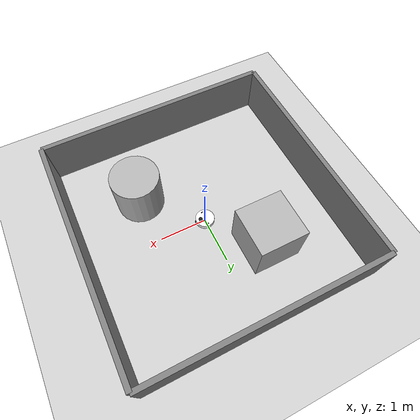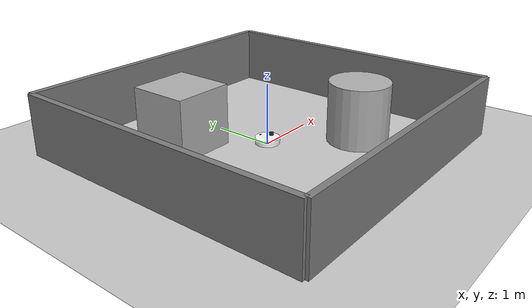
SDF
<sdf version='1.10'>
  <world name='sweepi_world'>
    <physics type='ode'>
      <real_time_update_rate>1000</real_time_update_rate>
      <max_step_size>0.001</max_step_size>
      <real_time_factor>1</real_time_factor>
      <ode>
        <solver>
          <type>quick</type>
          <iters>150</iters>
          <precon_iters>0</precon_iters>
          <sor>1.3999999999999999</sor>
          <use_dynamic_moi_rescaling>true</use_dynamic_moi_rescaling>
        </solver>
        <constraints>
          <cfm>1.0000000000000001e-05</cfm>
          <erp>0.20000000000000001</erp>
          <contact_max_correcting_vel>2000</contact_max_correcting_vel>
          <contact_surface_layer>0.01</contact_surface_layer>
        </constraints>
      </ode>
    </physics>
    <gravity>0 0 -9.8100000000000005</gravity>
    <magnetic_field>5.5644999999999998e-06 2.2875799999999999e-05 -4.2388400000000002e-05</magnetic_field>
    <scene>
      <ambient>0.400000006 0.400000006 0.400000006 1</ambient>
      <background>0.699999988 0.699999988 0.699999988 1</background>
      <shadows>true</shadows>
    </scene>
    <plugin name='gz::sim::systems::Physics' filename='gz-sim-physics-system'/>
    <plugin name='gz::sim::systems::UserCommands' filename='gz-sim-user-commands-system'/>
    <plugin name='gz::sim::systems::SceneBroadcaster' filename='gz-sim-scene-broadcaster-system'/>
    <plugin name='gz::sim::systems::Sensors' filename='gz-sim-sensors-system'>
      <render_engine>ogre2</render_engine>
    </plugin>
    <plugin name='gz::sim::systems::Imu' filename='gz-sim-imu-system'/>
    <atmosphere type='adiabatic'/>
    <model name='ground_plane'>
      <static>true</static>
      <link name='link'>
        <collision name='collision'>
          <geometry>
            <plane>
              <normal>0 0 1</normal>
              <size>100 100</size>
            </plane>
          </geometry>
          <surface>
            <friction>
              <ode/>
            </friction>
            <bounce/>
            <contact/>
          </surface>
        </collision>
        <visual name='visual'>
          <geometry>
            <plane>
              <normal>0 0 1</normal>
              <size>100 100</size>
            </plane>
          </geometry>
          <material>
            <ambient>0.800000012 0.800000012 0.800000012 1</ambient>
            <diffuse>0.800000012 0.800000012 0.800000012 1</diffuse>
            <specular>0.800000012 0.800000012 0.800000012 1</specular>
          </material>
        </visual>
        <pose>0 0 0 0 0 0</pose>
        <inertial>
          <pose>0 0 0 0 0 0</pose>
          <mass>1</mass>
          <inertia>
            <ixx>1</ixx>
            <ixy>0</ixy>
            <ixz>0</ixz>
            <iyy>1</iyy>
            <iyz>0</iyz>
            <izz>1</izz>
          </inertia>
        </inertial>
        <enable_wind>false</enable_wind>
      </link>
      <pose>0 0 0 0 0 0</pose>
      <self_collide>false</self_collide>
    </model>
    <model name='wall_north'>
      <static>true</static>
      <pose>0 2.5 0.5 0 0 0</pose>
      <link name='link'>
        <collision name='collision'>
          <geometry>
            <box>
              <size>5 0.10000000000000001 1</size>
            </box>
          </geometry>
          <surface>
            <friction>
              <ode/>
            </friction>
            <bounce/>
            <contact/>
          </surface>
        </collision>
        <visual name='visual'>
          <geometry>
            <box>
              <size>5 0.10000000000000001 1</size>
            </box>
          </geometry>
          <material>
            <ambient>0.5 0.5 0.5 1</ambient>
            <diffuse>0.5 0.5 0.5 1</diffuse>
            <specular>0.5 0.5 0.5 1</specular>
          </material>
        </visual>
        <pose>0 0 0 0 0 0</pose>
        <inertial>
          <pose>0 0 0 0 0 0</pose>
          <mass>1</mass>
          <inertia>
            <ixx>1</ixx>
            <ixy>0</ixy>
            <ixz>0</ixz>
            <iyy>1</iyy>
            <iyz>0</iyz>
            <izz>1</izz>
          </inertia>
        </inertial>
        <enable_wind>false</enable_wind>
      </link>
      <self_collide>false</self_collide>
    </model>
    <model name='wall_south'>
      <static>true</static>
      <pose>0 -2.5 0.5 0 0 0</pose>
      <link name='link'>
        <collision name='collision'>
          <geometry>
            <box>
              <size>5 0.10000000000000001 1</size>
            </box>
          </geometry>
          <surface>
            <friction>
              <ode/>
            </friction>
            <bounce/>
            <contact/>
          </surface>
        </collision>
        <visual name='visual'>
          <geometry>
            <box>
              <size>5 0.10000000000000001 1</size>
            </box>
          </geometry>
          <material>
            <ambient>0.5 0.5 0.5 1</ambient>
            <diffuse>0.5 0.5 0.5 1</diffuse>
            <specular>0.5 0.5 0.5 1</specular>
          </material>
        </visual>
        <pose>0 0 0 0 0 0</pose>
        <inertial>
          <pose>0 0 0 0 0 0</pose>
          <mass>1</mass>
          <inertia>
            <ixx>1</ixx>
            <ixy>0</ixy>
            <ixz>0</ixz>
            <iyy>1</iyy>
            <iyz>0</iyz>
            <izz>1</izz>
          </inertia>
        </inertial>
        <enable_wind>false</enable_wind>
      </link>
      <self_collide>false</self_collide>
    </model>
    <model name='wall_east'>
      <static>true</static>
      <pose>2.5 0 0.5 0 0 0</pose>
      <link name='link'>
        <collision name='collision'>
          <geometry>
            <box>
              <size>0.10000000000000001 5 1</size>
            </box>
          </geometry>
          <surface>
            <friction>
              <ode/>
            </friction>
            <bounce/>
            <contact/>
          </surface>
        </collision>
        <visual name='visual'>
          <geometry>
            <box>
              <size>0.10000000000000001 5 1</size>
            </box>
          </geometry>
          <material>
            <ambient>0.5 0.5 0.5 1</ambient>
            <diffuse>0.5 0.5 0.5 1</diffuse>
            <specular>0.5 0.5 0.5 1</specular>
          </material>
        </visual>
        <pose>0 0 0 0 0 0</pose>
        <inertial>
          <pose>0 0 0 0 0 0</pose>
          <mass>1</mass>
          <inertia>
            <ixx>1</ixx>
            <ixy>0</ixy>
            <ixz>0</ixz>
            <iyy>1</iyy>
            <iyz>0</iyz>
            <izz>1</izz>
          </inertia>
        </inertial>
        <enable_wind>false</enable_wind>
      </link>
      <self_collide>false</self_collide>
    </model>
    <model name='wall_west'>
      <static>true</static>
      <pose>-2.5 0 0.5 0 0 0</pose>
      <link name='link'>
        <collision name='collision'>
          <geometry>
            <box>
              <size>0.10000000000000001 5 1</size>
            </box>
          </geometry>
          <surface>
            <friction>
              <ode/>
            </friction>
            <bounce/>
            <contact/>
          </surface>
        </collision>
        <visual name='visual'>
          <geometry>
            <box>
              <size>0.10000000000000001 5 1</size>
            </box>
          </geometry>
          <material>
            <ambient>0.5 0.5 0.5 1</ambient>
            <diffuse>0.5 0.5 0.5 1</diffuse>
            <specular>0.5 0.5 0.5 1</specular>
          </material>
        </visual>
        <pose>0 0 0 0 0 0</pose>
        <inertial>
          <pose>0 0 0 0 0 0</pose>
          <mass>1</mass>
          <inertia>
            <ixx>1</ixx>
            <ixy>0</ixy>
            <ixz>0</ixz>
            <iyy>1</iyy>
            <iyz>0</iyz>
            <izz>1</izz>
          </inertia>
        </inertial>
        <enable_wind>false</enable_wind>
      </link>
      <self_collide>false</self_collide>
    </model>
    <model name='sweepi'>
      <link name='base_footprint'>
        <inertial>
          <pose>0.0082454819277108463 0 0.071802710843373516 0 0 0</pose>
          <mass>3.319999999999999</mass>
          <inertia>
            <ixx>0.033819691608935748</ixx>
            <ixy>0</ixy>
            <ixz>-0.0011491507906626511</ixz>
            <iyy>0.039973971541164652</iyy>
            <iyz>0</iyz>
            <izz>0.066348519932228942</izz>
          </inertia>
        </inertial>
        <collision name='base_footprint_fixed_joint_lump__base_link_collision'>
          <pose>0 0 0.070000000000000007 0 0 0</pose>
          <geometry>
            <cylinder>
              <length>0.10000000000000001</length>
              <radius>0.20000000000000001</radius>
            </cylinder>
          </geometry>
          <surface>
            <friction>
              <ode/>
            </friction>
            <bounce/>
            <contact/>
          </surface>
        </collision>
        <collision name='base_footprint_fixed_joint_lump__camera_link_collision_1'>
          <pose>0.20749999999999999 0 0.070000000000000007 0 0 0</pose>
          <geometry>
            <box>
              <size>0.014999999999999999 0.089999999999999997 0.025000000000000001</size>
            </box>
          </geometry>
          <surface>
            <contact>
              <ode/>
            </contact>
            <friction>
              <ode/>
            </friction>
            <bounce/>
          </surface>
        </collision>
        <collision name='base_footprint_fixed_joint_lump__front_caster_link_collision_2'>
          <pose>0.16 0 0.01 0 0 0</pose>
          <geometry>
            <sphere>
              <radius>0.01</radius>
            </sphere>
          </geometry>
          <surface>
            <contact>
              <ode/>
            </contact>
            <friction>
              <ode>
                <mu>0.10000000000000001</mu>
                <mu2>0.10000000000000001</mu2>
              </ode>
            </friction>
            <bounce/>
          </surface>
        </collision>
        <collision name='base_footprint_fixed_joint_lump__lidar_link_collision_3'>
          <pose>0.10000000000000001 0 0.14050000000000001 0 0 0</pose>
          <geometry>
            <cylinder>
              <length>0.041000000000000002</length>
              <radius>0.037999999999999999</radius>
            </cylinder>
          </geometry>
          <surface>
            <contact>
              <ode/>
            </contact>
            <friction>
              <ode/>
            </friction>
            <bounce/>
          </surface>
        </collision>
        <collision name='base_footprint_fixed_joint_lump__rear_caster_link_collision_4'>
          <pose>-0.16 0 0.01 0 0 0</pose>
          <geometry>
            <sphere>
              <radius>0.01</radius>
            </sphere>
          </geometry>
          <surface>
            <contact>
              <ode/>
            </contact>
            <friction>
              <ode>
                <mu>0.10000000000000001</mu>
                <mu2>0.10000000000000001</mu2>
              </ode>
            </friction>
            <bounce/>
          </surface>
        </collision>
        <visual name='base_footprint_fixed_joint_lump__base_link_visual'>
          <pose>0 0 0.070000000000000007 0 0 0</pose>
          <geometry>
            <cylinder>
              <length>0.10000000000000001</length>
              <radius>0.20000000000000001</radius>
            </cylinder>
          </geometry>
          <material>
            <diffuse>1 1 1 1</diffuse>
            <ambient>1 1 1 1</ambient>
          </material>
        </visual>
        <visual name='base_footprint_fixed_joint_lump__camera_link_visual_1'>
          <pose>0.20749999999999999 0 0.070000000000000007 0 0 0</pose>
          <geometry>
            <box>
              <size>0.014999999999999999 0.089999999999999997 0.025000000000000001</size>
            </box>
          </geometry>
          <material>
            <diffuse>0.125 0.125 0.125 1</diffuse>
            <ambient>0.125 0.125 0.125 1</ambient>
          </material>
        </visual>
        <visual name='base_footprint_fixed_joint_lump__front_caster_link_visual_2'>
          <pose>0.16 0 0.01 0 0 0</pose>
          <geometry>
            <sphere>
              <radius>0.01</radius>
            </sphere>
          </geometry>
          <material>
            <diffuse>1 0.599999964 0.162499994 1</diffuse>
            <ambient>1 0.599999964 0.162499994 1</ambient>
          </material>
        </visual>
        <visual name='base_footprint_fixed_joint_lump__lidar_link_visual_3'>
          <pose>0.10000000000000001 0 0.14050000000000001 0 0 0</pose>
          <geometry>
            <cylinder>
              <length>0.041000000000000002</length>
              <radius>0.037999999999999999</radius>
            </cylinder>
          </geometry>
          <material>
            <diffuse>0.125 0.125 0.125 1</diffuse>
            <ambient>0.125 0.125 0.125 1</ambient>
          </material>
        </visual>
        <visual name='base_footprint_fixed_joint_lump__rear_caster_link_visual_4'>
          <pose>-0.16 0 0.01 0 0 0</pose>
          <geometry>
            <sphere>
              <radius>0.01</radius>
            </sphere>
          </geometry>
          <material>
            <diffuse>1 0.599999964 0.162499994 1</diffuse>
            <ambient>1 0.599999964 0.162499994 1</ambient>
          </material>
        </visual>
        <sensor name='camera' type='camera'>
          <pose>0.20749999999999999 0 0.070000000000000007 0 0 0</pose>
          <topic>camera/image_raw</topic>
          <update_rate>20</update_rate>
          <enable_metrics>false</enable_metrics>
          <camera name='__default__'>
            <pose>0 0 0 0 0 0</pose>
            <horizontal_fov>1.3962634</horizontal_fov>
            <image>
              <width>640</width>
              <height>480</height>
              <format>RGB_INT8</format>
              <anti_aliasing>4</anti_aliasing>
            </image>
            <camera_info_topic>camera/camera_info</camera_info_topic>
            <trigger_topic></trigger_topic>
            <triggered>false</triggered>
            <clip>
              <near>0.10000000000000001</near>
              <far>15</far>
            </clip>
            <save enabled='false'>
              <path>__default__</path>
            </save>
            <visibility_mask>4294967295</visibility_mask>
            <noise>
              <type>gaussian</type>
              <mean>0</mean>
              <stddev>0.0070000000000000001</stddev>
            </noise>
            <distortion>
              <k1>0</k1>
              <k2>0</k2>
              <k3>0</k3>
              <p1>0</p1>
              <p2>0</p2>
              <center>0.5 0.5</center>
            </distortion>
            <lens>
              <type>stereographic</type>
              <scale_to_hfov>true</scale_to_hfov>
              <cutoff_angle>1.5707963267948966</cutoff_angle>
              <env_texture_size>256</env_texture_size>
            </lens>
            <optical_frame_id>camera_link_optical</optical_frame_id>
          </camera>
        </sensor>
        <sensor name='imu_sensor' type='imu'>
          <pose>0 0 0.12 0 0 0</pose>
          <topic>/imu</topic>
          <update_rate>100</update_rate>
          <enable_metrics>false</enable_metrics>
          <imu>
            <orientation_reference_frame>
              <localization>CUSTOM</localization>
              <custom_rpy>0 0 0</custom_rpy>
              <grav_dir_x>1 0 0</grav_dir_x>
            </orientation_reference_frame>
            <angular_velocity>
              <x>
                <noise type='gaussian'>
                  <mean>0</mean>
                  <stddev>0.00020000000000000001</stddev>
                  <bias_mean>0</bias_mean>
                  <bias_stddev>0</bias_stddev>
                  <dynamic_bias_stddev>0</dynamic_bias_stddev>
                  <dynamic_bias_correlation_time>0</dynamic_bias_correlation_time>
                  <precision>0</precision>
                </noise>
              </x>
              <y>
                <noise type='gaussian'>
                  <mean>0</mean>
                  <stddev>0.00020000000000000001</stddev>
                  <bias_mean>0</bias_mean>
                  <bias_stddev>0</bias_stddev>
                  <dynamic_bias_stddev>0</dynamic_bias_stddev>
                  <dynamic_bias_correlation_time>0</dynamic_bias_correlation_time>
                  <precision>0</precision>
                </noise>
              </y>
              <z>
                <noise type='gaussian'>
                  <mean>0</mean>
                  <stddev>0.00020000000000000001</stddev>
                  <bias_mean>0</bias_mean>
                  <bias_stddev>0</bias_stddev>
                  <dynamic_bias_stddev>0</dynamic_bias_stddev>
                  <dynamic_bias_correlation_time>0</dynamic_bias_correlation_time>
                  <precision>0</precision>
                </noise>
              </z>
            </angular_velocity>
            <linear_acceleration>
              <x>
                <noise type='gaussian'>
                  <mean>0</mean>
                  <stddev>0.01</stddev>
                  <bias_mean>0</bias_mean>
                  <bias_stddev>0</bias_stddev>
                  <dynamic_bias_stddev>0</dynamic_bias_stddev>
                  <dynamic_bias_correlation_time>0</dynamic_bias_correlation_time>
                  <precision>0</precision>
                </noise>
              </x>
              <y>
                <noise type='gaussian'>
                  <mean>0</mean>
                  <stddev>0.01</stddev>
                  <bias_mean>0</bias_mean>
                  <bias_stddev>0</bias_stddev>
                  <dynamic_bias_stddev>0</dynamic_bias_stddev>
                  <dynamic_bias_correlation_time>0</dynamic_bias_correlation_time>
                  <precision>0</precision>
                </noise>
              </y>
              <z>
                <noise type='gaussian'>
                  <mean>0</mean>
                  <stddev>0.01</stddev>
                  <bias_mean>0</bias_mean>
                  <bias_stddev>0</bias_stddev>
                  <dynamic_bias_stddev>0</dynamic_bias_stddev>
                  <dynamic_bias_correlation_time>0</dynamic_bias_correlation_time>
                  <precision>0</precision>
                </noise>
              </z>
            </linear_acceleration>
            <enable_orientation>true</enable_orientation>
          </imu>
        </sensor>
        <sensor name='gpu_lidar' type='gpu_lidar'>
          <pose>0.10000000000000001 0 0.14050000000000001 0 0 0</pose>
          <topic>/scan</topic>
          <update_rate>10</update_rate>
          <enable_metrics>false</enable_metrics>
          <lidar>
            <scan>
              <horizontal>
                <samples>720</samples>
                <resolution>1</resolution>
                <min_angle>-3.1400000000000001</min_angle>
                <max_angle>3.1400000000000001</max_angle>
              </horizontal>
              <vertical>
                <samples>1</samples>
                <min_angle>0</min_angle>
                <max_angle>0</max_angle>
                <resolution>1</resolution>
              </vertical>
            </scan>
            <range>
              <min>0.10000000000000001</min>
              <max>12</max>
              <resolution>0.01</resolution>
            </range>
            <noise>
              <type>gaussian</type>
              <mean>0</mean>
              <stddev>0.001</stddev>
            </noise>
            <visibility_mask>4294967295</visibility_mask>
          </lidar>
        </sensor>
        <pose>0 0 0 0 0 0</pose>
        <enable_wind>false</enable_wind>
      </link>
      <joint name='base_left_wheel_joint' type='revolute'>
        <pose>0 0 0 0 0 0</pose>
        <parent>base_footprint</parent>
        <child>left_wheel_link</child>
        <axis>
          <xyz>0 1 0</xyz>
          <limit>
            <lower>-inf</lower>
            <upper>inf</upper>
            <effort>inf</effort>
            <velocity>inf</velocity>
            <stiffness>100000000</stiffness>
            <dissipation>1</dissipation>
          </limit>
          <dynamics>
            <spring_reference>0</spring_reference>
            <spring_stiffness>0</spring_stiffness>
            <damping>0.01</damping>
            <friction>0.01</friction>
          </dynamics>
        </axis>
      </joint>
      <link name='left_wheel_link'>
        <pose>-2.4233807008389483e-27 0.145 0.0615 1.8452825827681945e-32 -5.8511218419939957e-11 -5.3984866123430377e-43</pose>
        <inertial>
          <pose>0 0 0 1.5707963267948959 0 0</pose>
          <mass>0.14999999999999999</mass>
          <inertia>
            <ixx>0.000146834375</ixx>
            <ixy>0</ixy>
            <ixz>0</ixz>
            <iyy>0.000146834375</iyy>
            <iyz>0</iyz>
            <izz>0.00028366875</izz>
          </inertia>
        </inertial>
        <collision name='left_wheel_link_collision'>
          <pose>0 0 0 1.5707963267948959 0 0</pose>
          <geometry>
            <cylinder>
              <length>0.02</length>
              <radius>0.0615</radius>
            </cylinder>
          </geometry>
          <surface>
            <friction>
              <ode/>
            </friction>
            <bounce/>
            <contact/>
          </surface>
        </collision>
        <visual name='left_wheel_link_visual'>
          <pose>0 0 0 1.5707963267948959 0 0</pose>
          <geometry>
            <cylinder>
              <length>0.02</length>
              <radius>0.0615</radius>
            </cylinder>
          </geometry>
          <material>
            <diffuse>0.125 0.125 0.125 1</diffuse>
            <ambient>0.125 0.125 0.125 1</ambient>
          </material>
        </visual>
        <enable_wind>false</enable_wind>
      </link>
      <joint name='base_right_wheel_joint' type='revolute'>
        <pose>0 0 0 0 0 0</pose>
        <parent>base_footprint</parent>
        <child>right_wheel_link</child>
        <axis>
          <xyz>0 1 0</xyz>
          <limit>
            <lower>-inf</lower>
            <upper>inf</upper>
            <effort>inf</effort>
            <velocity>inf</velocity>
            <stiffness>100000000</stiffness>
            <dissipation>1</dissipation>
          </limit>
          <dynamics>
            <spring_reference>0</spring_reference>
            <spring_stiffness>0</spring_stiffness>
            <damping>0.01</damping>
            <friction>0.01</friction>
          </dynamics>
        </axis>
      </joint>
      <link name='right_wheel_link'>
        <pose>8.0779356694631609e-28 -0.145 0.0615 1.6422652616699836e-32 -5.8511533459547698e-11 -1.5407439559902459e-33</pose>
        <inertial>
          <pose>0 0 0 1.5707963267948959 0 0</pose>
          <mass>0.14999999999999999</mass>
          <inertia>
            <ixx>0.000146834375</ixx>
            <ixy>0</ixy>
            <ixz>0</ixz>
            <iyy>0.000146834375</iyy>
            <iyz>0</iyz>
            <izz>0.00028366875</izz>
          </inertia>
        </inertial>
        <collision name='right_wheel_link_collision'>
          <pose>0 0 0 1.5707963267948959 0 0</pose>
          <geometry>
            <cylinder>
              <length>0.02</length>
              <radius>0.0615</radius>
            </cylinder>
          </geometry>
          <surface>
            <friction>
              <ode/>
            </friction>
            <bounce/>
            <contact/>
          </surface>
        </collision>
        <visual name='right_wheel_link_visual'>
          <pose>0 0 0 1.5707963267948959 0 0</pose>
          <geometry>
            <cylinder>
              <length>0.02</length>
              <radius>0.0615</radius>
            </cylinder>
          </geometry>
          <material>
            <diffuse>0.125 0.125 0.125 1</diffuse>
            <ambient>0.125 0.125 0.125 1</ambient>
          </material>
        </visual>
        <enable_wind>false</enable_wind>
      </link>
      <plugin name='gz::sim::systems::DiffDrive' filename='gz-sim-diff-drive-system'>
        <left_joint>base_left_wheel_joint</left_joint>
        <right_joint>base_right_wheel_joint</right_joint>
        <wheel_separation>0.290</wheel_separation>
        <wheel_radius>0.0615</wheel_radius>
        <odom_publish_frequency>50</odom_publish_frequency>
        <topic>/model/sweepi/cmd_vel</topic>
        <odom_topic>/odom</odom_topic>
        <tf_topic>/model/sweepi/tf</tf_topic>
        <frame_id>odom</frame_id>
        <child_frame_id>base_footprint</child_frame_id>
        <max_linear_acceleration>1.0</max_linear_acceleration>
      </plugin>
      <plugin name='gz::sim::systems::JointStatePublisher' filename='gz-sim-joint-state-publisher-system'>
        <joint_name>base_left_wheel_joint</joint_name>
        <joint_name>base_right_wheel_joint</joint_name>
      </plugin>
      <frame name='camera_optical_joint' attached_to='camera_link'>
        <pose>0 0 0 -1.5707963267948959 -5.5511151231257827e-17 -1.5707963267948959</pose>
      </frame>
      <frame name='camera_link_optical' attached_to='camera_optical_joint'>
        <pose>0 0 0 0 0 0</pose>
      </frame>
      <frame name='base_camera_joint' attached_to='base_link'>
        <pose>0.20749999999999999 0 0 0 0 0</pose>
      </frame>
      <frame name='camera_link' attached_to='base_camera_joint'>
        <pose>0 0 0 0 0 0</pose>
      </frame>
      <frame name='base_front_caster_joint' attached_to='base_link'>
        <pose>0.16 0 -0.059999999999999998 0 0 0</pose>
      </frame>
      <frame name='front_caster_link' attached_to='base_front_caster_joint'>
        <pose>0 0 0 0 0 0</pose>
      </frame>
      <frame name='base_imu_joint' attached_to='base_link'>
        <pose>0 0 0.050000000000000003 0 0 0</pose>
      </frame>
      <frame name='imu_link' attached_to='base_imu_joint'>
        <pose>0 0 0 0 0 0</pose>
      </frame>
      <frame name='lidar_optical_joint' attached_to='lidar_link'>
        <pose>0 0 0 0 0 0</pose>
      </frame>
      <frame name='lidar_link_optical' attached_to='lidar_optical_joint'>
        <pose>0 0 0 0 0 0</pose>
      </frame>
      <frame name='base_lidar_joint' attached_to='base_link'>
        <pose>0.10000000000000001 0 0.070500000000000007 0 0 0</pose>
      </frame>
      <frame name='lidar_link' attached_to='base_lidar_joint'>
        <pose>0 0 0 0 0 0</pose>
      </frame>
      <frame name='base_rear_caster_joint' attached_to='base_link'>
        <pose>-0.16 0 -0.059999999999999998 0 0 0</pose>
      </frame>
      <frame name='rear_caster_link' attached_to='base_rear_caster_joint'>
        <pose>0 0 0 0 0 0</pose>
      </frame>
      <frame name='base_joint' attached_to='base_footprint'>
        <pose>0 0 0.070000000000000007 0 0 0</pose>
      </frame>
      <frame name='base_link' attached_to='base_joint'>
        <pose>0 0 0 0 0 0</pose>
      </frame>
      <pose>-4.3762593978030966e-12 1.2766809935584081e-18 -4.9989245633451089e-09 -2.7795281180862549e-16 2.6929080826201931e-09 1.2888367330373563e-17</pose>
      <static>false</static>
      <self_collide>false</self_collide>
    </model>
    <model name='box'>
      <pose>-0.866949198343133 1.01233280190362 0.4999999901896216 3.5748230254087715e-17 -1.919862569032282e-17 -7.5576446919679358e-18</pose>
      <link name='box_link'>
        <inertial>
          <inertia>
            <ixx>0.16666</ixx>
            <ixy>0</ixy>
            <ixz>0</ixz>
            <iyy>0.16666</iyy>
            <iyz>0</iyz>
            <izz>0.16666</izz>
          </inertia>
          <mass>1</mass>
          <pose>0 0 0 0 0 0</pose>
        </inertial>
        <collision name='box_collision'>
          <geometry>
            <box>
              <size>1 1 1</size>
            </box>
          </geometry>
          <surface>
            <friction>
              <ode/>
            </friction>
            <bounce/>
            <contact/>
          </surface>
        </collision>
        <visual name='box_visual'>
          <geometry>
            <box>
              <size>1 1 1</size>
            </box>
          </geometry>
          <material>
            <ambient>0.300000012 0.300000012 0.300000012 1</ambient>
            <diffuse>0.699999988 0.699999988 0.699999988 1</diffuse>
            <specular>1 1 1 1</specular>
          </material>
        </visual>
        <pose>0 0 0 0 0 0</pose>
        <enable_wind>false</enable_wind>
      </link>
      <static>false</static>
      <self_collide>false</self_collide>
    </model>
    <model name='cylinder'>
      <pose>1.04167718438792 -1.0350664699237921 0.49999999631037062 2.1149776268070889e-17 -3.7733758200729012e-18 2.6982249143959399e-17</pose>
      <link name='cylinder_link'>
        <inertial>
          <inertia>
            <ixx>0.14580000000000001</ixx>
            <ixy>0</ixy>
            <ixz>0</ixz>
            <iyy>0.14580000000000001</iyy>
            <iyz>0</iyz>
            <izz>0.125</izz>
          </inertia>
          <mass>1</mass>
          <pose>0 0 0 0 0 0</pose>
        </inertial>
        <collision name='cylinder_collision'>
          <geometry>
            <cylinder>
              <radius>0.5</radius>
              <length>1</length>
            </cylinder>
          </geometry>
          <surface>
            <friction>
              <ode/>
            </friction>
            <bounce/>
            <contact/>
          </surface>
        </collision>
        <visual name='cylinder_visual'>
          <geometry>
            <cylinder>
              <radius>0.5</radius>
              <length>1</length>
            </cylinder>
          </geometry>
          <material>
            <ambient>0.300000012 0.300000012 0.300000012 1</ambient>
            <diffuse>0.699999988 0.699999988 0.699999988 1</diffuse>
            <specular>1 1 1 1</specular>
          </material>
        </visual>
        <pose>0 0 0 0 0 0</pose>
        <enable_wind>false</enable_wind>
      </link>
      <static>false</static>
      <self_collide>false</self_collide>
    </model>
    <light name='sun' type='directional'>
      <pose>0 0 10 0 0 0</pose>
      <cast_shadows>true</cast_shadows>
      <intensity>1</intensity>
      <direction>-0.5 0.10000000000000001 -0.90000000000000002</direction>
      <diffuse>0.800000012 0.800000012 0.800000012 1</diffuse>
      <specular>0.200000003 0.200000003 0.200000003 1</specular>
      <attenuation>
        <range>1000</range>
        <linear>0.01</linear>
        <constant>0.90000000000000002</constant>
        <quadratic>0.001</quadratic>
      </attenuation>
      <spot>
        <inner_angle>0</inner_angle>
        <outer_angle>0</outer_angle>
        <falloff>0</falloff>
      </spot>
    </light>
  </world>
</sdf>
